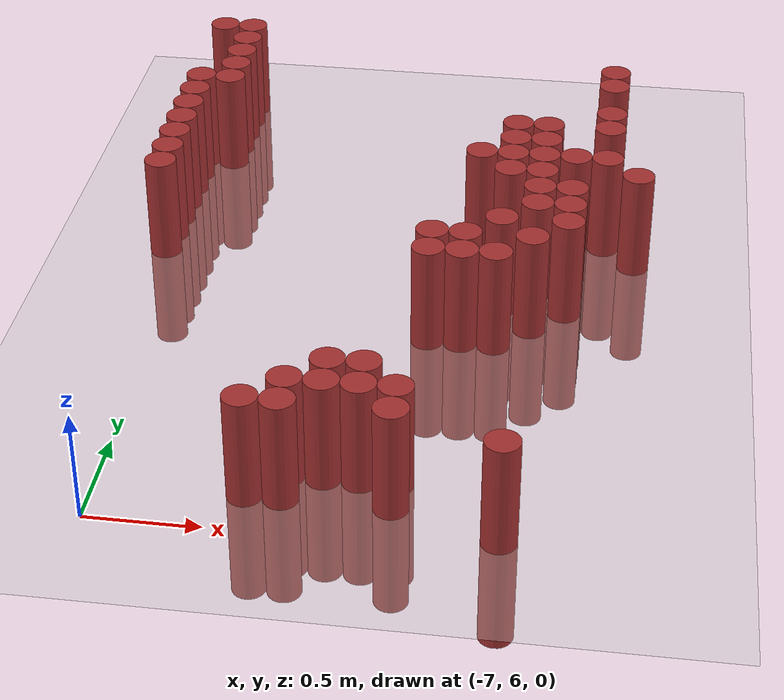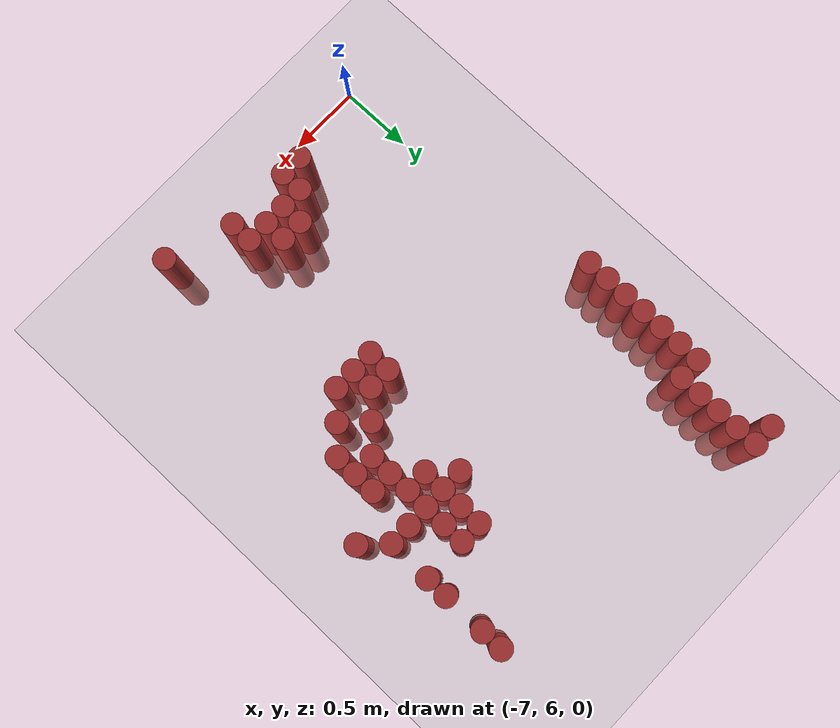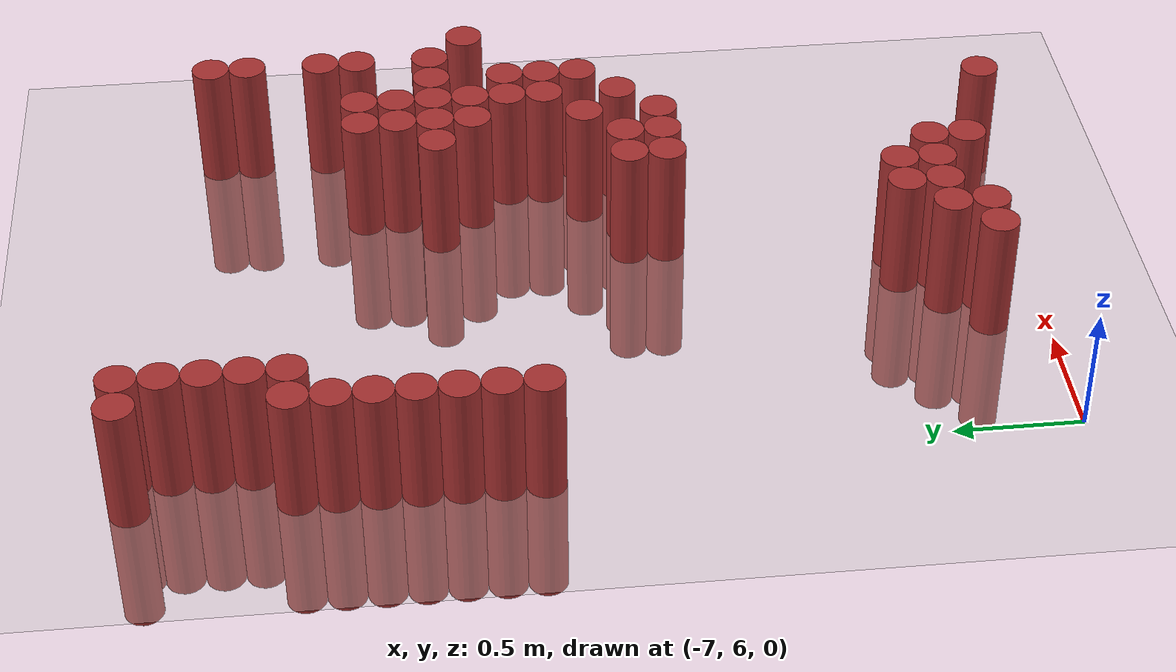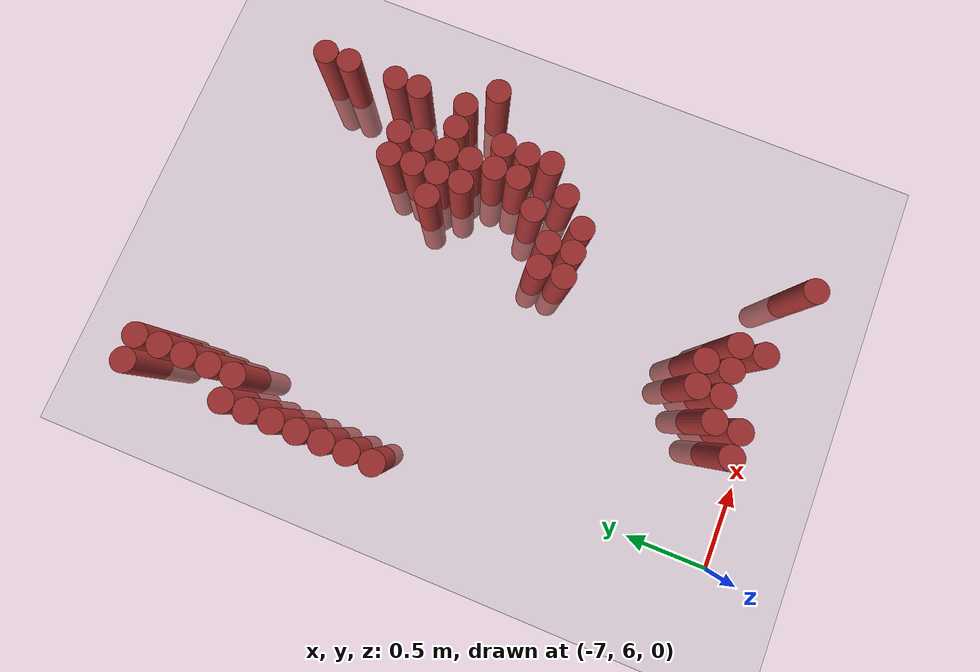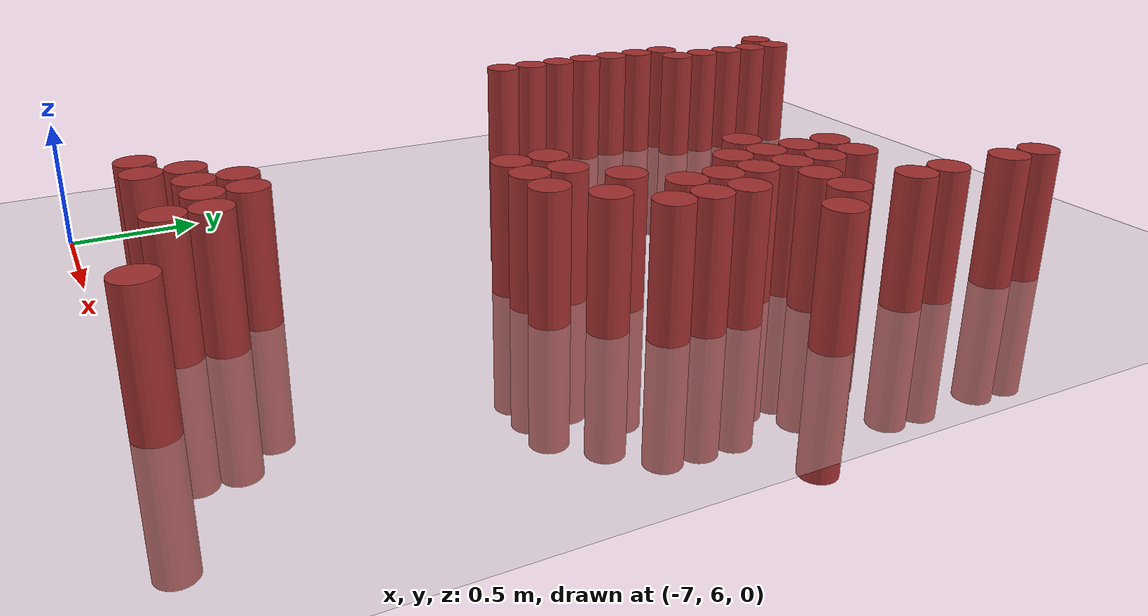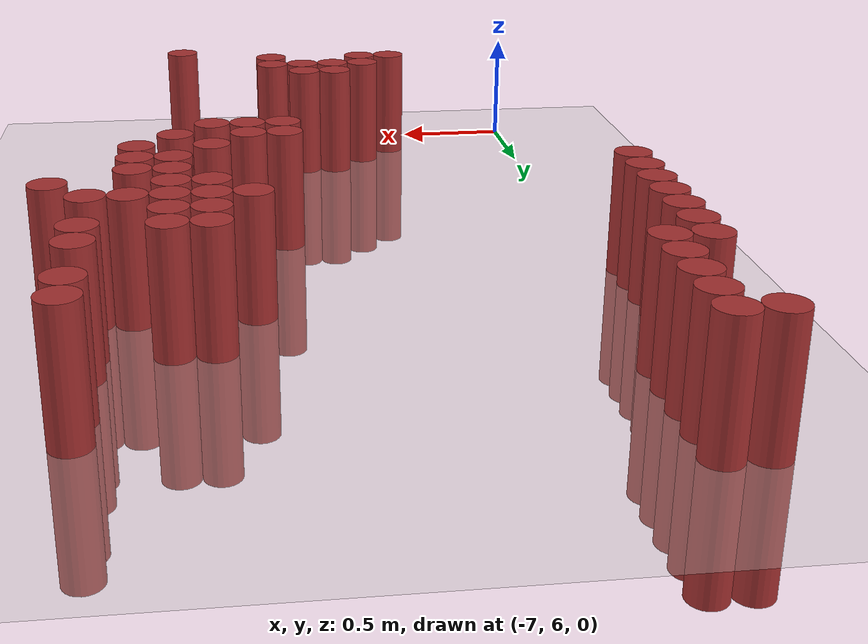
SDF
<sdf version="1.6">
 <world name="default">
  <model name="ground_plane">
   <static>1</static>
   <link name="link">
    <collision name="collision">
     <geometry><plane><normal>0 0 1</normal><size>100 100</size></plane></geometry>
     <surface><friction><ode><mu>100</mu><mu2>50</mu2></ode></friction></surface>
    </collision>
    <visual name="visual">
     <cast_shadows>0</cast_shadows>
     <geometry><plane><normal>0 0 1</normal><size>100 100</size></plane></geometry>
     <material>
      <script><uri>file://media/materials/scripts/gazebo.material</uri><name>Gazebo/Grey</name></script>
     </material>
    </visual>
   </link>
  </model>
  <model name="unit_cylinder_196">
   <static>1</static>
   <pose>-7.125000 8.025000 0.000000 0.000000 0.000000 0.000000</pose>
   <link name="link">
    <inertial>
     <mass>1</mass>
     <inertia><ixx>0.145833</ixx><ixy>0</ixy><ixz>0</ixz><iyy>0.145833</iyy><iyz>0</iyz><izz>0.125</izz></inertia>
    </inertial>
    <collision name="collision">
     <geometry><cylinder><radius>0.075000</radius><length>1</length></cylinder></geometry>
    </collision>
    <visual name="visual">
     <geometry><cylinder><radius>0.075000</radius><length>1</length></cylinder></geometry>
     <material>
      <ambient>0.648000 0.192000 0.192000 1</ambient>
      <diffuse>0.648000 0.192000 0.192000 1</diffuse>
     </material>
     <material>
      <script><name>Gazebo/Grey</name><uri>file://media/materials/scripts/gazebo.material</uri></script>
     </material>
    </visual>
   </link>
  </model>
  <model name="unit_cylinder_197">
   <static>1</static>
   <pose>-7.125000 8.175000 0.000000 0.000000 0.000000 0.000000</pose>
   <link name="link">
    <inertial>
     <mass>1</mass>
     <inertia><ixx>0.145833</ixx><ixy>0</ixy><ixz>0</ixz><iyy>0.145833</iyy><iyz>0</iyz><izz>0.125</izz></inertia>
    </inertial>
    <collision name="collision">
     <geometry><cylinder><radius>0.075000</radius><length>1</length></cylinder></geometry>
    </collision>
    <visual name="visual">
     <geometry><cylinder><radius>0.075000</radius><length>1</length></cylinder></geometry>
     <material>
      <ambient>0.648000 0.192000 0.192000 1</ambient>
      <diffuse>0.648000 0.192000 0.192000 1</diffuse>
     </material>
     <material>
      <script><name>Gazebo/Grey</name><uri>file://media/materials/scripts/gazebo.material</uri></script>
     </material>
    </visual>
   </link>
  </model>
  <model name="unit_cylinder_198">
   <static>1</static>
   <pose>-7.125000 8.325000 0.000000 0.000000 0.000000 0.000000</pose>
   <link name="link">
    <inertial>
     <mass>1</mass>
     <inertia><ixx>0.145833</ixx><ixy>0</ixy><ixz>0</ixz><iyy>0.145833</iyy><iyz>0</iyz><izz>0.125</izz></inertia>
    </inertial>
    <collision name="collision">
     <geometry><cylinder><radius>0.075000</radius><length>1</length></cylinder></geometry>
    </collision>
    <visual name="visual">
     <geometry><cylinder><radius>0.075000</radius><length>1</length></cylinder></geometry>
     <material>
      <ambient>0.648000 0.192000 0.192000 1</ambient>
      <diffuse>0.648000 0.192000 0.192000 1</diffuse>
     </material>
     <material>
      <script><name>Gazebo/Grey</name><uri>file://media/materials/scripts/gazebo.material</uri></script>
     </material>
    </visual>
   </link>
  </model>
  <model name="unit_cylinder_199">
   <static>1</static>
   <pose>-7.125000 8.475000 0.000000 0.000000 0.000000 0.000000</pose>
   <link name="link">
    <inertial>
     <mass>1</mass>
     <inertia><ixx>0.145833</ixx><ixy>0</ixy><ixz>0</ixz><iyy>0.145833</iyy><iyz>0</iyz><izz>0.125</izz></inertia>
    </inertial>
    <collision name="collision">
     <geometry><cylinder><radius>0.075000</radius><length>1</length></cylinder></geometry>
    </collision>
    <visual name="visual">
     <geometry><cylinder><radius>0.075000</radius><length>1</length></cylinder></geometry>
     <material>
      <ambient>0.648000 0.192000 0.192000 1</ambient>
      <diffuse>0.648000 0.192000 0.192000 1</diffuse>
     </material>
     <material>
      <script><name>Gazebo/Grey</name><uri>file://media/materials/scripts/gazebo.material</uri></script>
     </material>
    </visual>
   </link>
  </model>
  <model name="unit_cylinder_200">
   <static>1</static>
   <pose>-7.125000 8.625000 0.000000 0.000000 0.000000 0.000000</pose>
   <link name="link">
    <inertial>
     <mass>1</mass>
     <inertia><ixx>0.145833</ixx><ixy>0</ixy><ixz>0</ixz><iyy>0.145833</iyy><iyz>0</iyz><izz>0.125</izz></inertia>
    </inertial>
    <collision name="collision">
     <geometry><cylinder><radius>0.075000</radius><length>1</length></cylinder></geometry>
    </collision>
    <visual name="visual">
     <geometry><cylinder><radius>0.075000</radius><length>1</length></cylinder></geometry>
     <material>
      <ambient>0.648000 0.192000 0.192000 1</ambient>
      <diffuse>0.648000 0.192000 0.192000 1</diffuse>
     </material>
     <material>
      <script><name>Gazebo/Grey</name><uri>file://media/materials/scripts/gazebo.material</uri></script>
     </material>
    </visual>
   </link>
  </model>
  <model name="unit_cylinder_201">
   <static>1</static>
   <pose>-7.125000 8.775000 0.000000 0.000000 0.000000 0.000000</pose>
   <link name="link">
    <inertial>
     <mass>1</mass>
     <inertia><ixx>0.145833</ixx><ixy>0</ixy><ixz>0</ixz><iyy>0.145833</iyy><iyz>0</iyz><izz>0.125</izz></inertia>
    </inertial>
    <collision name="collision">
     <geometry><cylinder><radius>0.075000</radius><length>1</length></cylinder></geometry>
    </collision>
    <visual name="visual">
     <geometry><cylinder><radius>0.075000</radius><length>1</length></cylinder></geometry>
     <material>
      <ambient>0.648000 0.192000 0.192000 1</ambient>
      <diffuse>0.648000 0.192000 0.192000 1</diffuse>
     </material>
     <material>
      <script><name>Gazebo/Grey</name><uri>file://media/materials/scripts/gazebo.material</uri></script>
     </material>
    </visual>
   </link>
  </model>
  <model name="unit_cylinder_202">
   <static>1</static>
   <pose>-7.125000 8.925000 0.000000 0.000000 0.000000 0.000000</pose>
   <link name="link">
    <inertial>
     <mass>1</mass>
     <inertia><ixx>0.145833</ixx><ixy>0</ixy><ixz>0</ixz><iyy>0.145833</iyy><iyz>0</iyz><izz>0.125</izz></inertia>
    </inertial>
    <collision name="collision">
     <geometry><cylinder><radius>0.075000</radius><length>1</length></cylinder></geometry>
    </collision>
    <visual name="visual">
     <geometry><cylinder><radius>0.075000</radius><length>1</length></cylinder></geometry>
     <material>
      <ambient>0.648000 0.192000 0.192000 1</ambient>
      <diffuse>0.648000 0.192000 0.192000 1</diffuse>
     </material>
     <material>
      <script><name>Gazebo/Grey</name><uri>file://media/materials/scripts/gazebo.material</uri></script>
     </material>
    </visual>
   </link>
  </model>
  <model name="unit_cylinder_203">
   <static>1</static>
   <pose>-7.125000 9.525000 0.000000 0.000000 0.000000 0.000000</pose>
   <link name="link">
    <inertial>
     <mass>1</mass>
     <inertia><ixx>0.145833</ixx><ixy>0</ixy><ixz>0</ixz><iyy>0.145833</iyy><iyz>0</iyz><izz>0.125</izz></inertia>
    </inertial>
    <collision name="collision">
     <geometry><cylinder><radius>0.075000</radius><length>1</length></cylinder></geometry>
    </collision>
    <visual name="visual">
     <geometry><cylinder><radius>0.075000</radius><length>1</length></cylinder></geometry>
     <material>
      <ambient>0.648000 0.192000 0.192000 1</ambient>
      <diffuse>0.648000 0.192000 0.192000 1</diffuse>
     </material>
     <material>
      <script><name>Gazebo/Grey</name><uri>file://media/materials/scripts/gazebo.material</uri></script>
     </material>
    </visual>
   </link>
  </model>
  <model name="unit_cylinder_204">
   <static>1</static>
   <pose>-6.975000 8.925000 0.000000 0.000000 0.000000 0.000000</pose>
   <link name="link">
    <inertial>
     <mass>1</mass>
     <inertia><ixx>0.145833</ixx><ixy>0</ixy><ixz>0</ixz><iyy>0.145833</iyy><iyz>0</iyz><izz>0.125</izz></inertia>
    </inertial>
    <collision name="collision">
     <geometry><cylinder><radius>0.075000</radius><length>1</length></cylinder></geometry>
    </collision>
    <visual name="visual">
     <geometry><cylinder><radius>0.075000</radius><length>1</length></cylinder></geometry>
     <material>
      <ambient>0.648000 0.192000 0.192000 1</ambient>
      <diffuse>0.648000 0.192000 0.192000 1</diffuse>
     </material>
     <material>
      <script><name>Gazebo/Grey</name><uri>file://media/materials/scripts/gazebo.material</uri></script>
     </material>
    </visual>
   </link>
  </model>
  <model name="unit_cylinder_205">
   <static>1</static>
   <pose>-6.975000 9.075000 0.000000 0.000000 0.000000 0.000000</pose>
   <link name="link">
    <inertial>
     <mass>1</mass>
     <inertia><ixx>0.145833</ixx><ixy>0</ixy><ixz>0</ixz><iyy>0.145833</iyy><iyz>0</iyz><izz>0.125</izz></inertia>
    </inertial>
    <collision name="collision">
     <geometry><cylinder><radius>0.075000</radius><length>1</length></cylinder></geometry>
    </collision>
    <visual name="visual">
     <geometry><cylinder><radius>0.075000</radius><length>1</length></cylinder></geometry>
     <material>
      <ambient>0.648000 0.192000 0.192000 1</ambient>
      <diffuse>0.648000 0.192000 0.192000 1</diffuse>
     </material>
     <material>
      <script><name>Gazebo/Grey</name><uri>file://media/materials/scripts/gazebo.material</uri></script>
     </material>
    </visual>
   </link>
  </model>
  <model name="unit_cylinder_206">
   <static>1</static>
   <pose>-6.975000 9.225000 0.000000 0.000000 0.000000 0.000000</pose>
   <link name="link">
    <inertial>
     <mass>1</mass>
     <inertia><ixx>0.145833</ixx><ixy>0</ixy><ixz>0</ixz><iyy>0.145833</iyy><iyz>0</iyz><izz>0.125</izz></inertia>
    </inertial>
    <collision name="collision">
     <geometry><cylinder><radius>0.075000</radius><length>1</length></cylinder></geometry>
    </collision>
    <visual name="visual">
     <geometry><cylinder><radius>0.075000</radius><length>1</length></cylinder></geometry>
     <material>
      <ambient>0.648000 0.192000 0.192000 1</ambient>
      <diffuse>0.648000 0.192000 0.192000 1</diffuse>
     </material>
     <material>
      <script><name>Gazebo/Grey</name><uri>file://media/materials/scripts/gazebo.material</uri></script>
     </material>
    </visual>
   </link>
  </model>
  <model name="unit_cylinder_207">
   <static>1</static>
   <pose>-6.975000 9.375000 0.000000 0.000000 0.000000 0.000000</pose>
   <link name="link">
    <inertial>
     <mass>1</mass>
     <inertia><ixx>0.145833</ixx><ixy>0</ixy><ixz>0</ixz><iyy>0.145833</iyy><iyz>0</iyz><izz>0.125</izz></inertia>
    </inertial>
    <collision name="collision">
     <geometry><cylinder><radius>0.075000</radius><length>1</length></cylinder></geometry>
    </collision>
    <visual name="visual">
     <geometry><cylinder><radius>0.075000</radius><length>1</length></cylinder></geometry>
     <material>
      <ambient>0.648000 0.192000 0.192000 1</ambient>
      <diffuse>0.648000 0.192000 0.192000 1</diffuse>
     </material>
     <material>
      <script><name>Gazebo/Grey</name><uri>file://media/materials/scripts/gazebo.material</uri></script>
     </material>
    </visual>
   </link>
  </model>
  <model name="unit_cylinder_208">
   <static>1</static>
   <pose>-6.975000 9.525000 0.000000 0.000000 0.000000 0.000000</pose>
   <link name="link">
    <inertial>
     <mass>1</mass>
     <inertia><ixx>0.145833</ixx><ixy>0</ixy><ixz>0</ixz><iyy>0.145833</iyy><iyz>0</iyz><izz>0.125</izz></inertia>
    </inertial>
    <collision name="collision">
     <geometry><cylinder><radius>0.075000</radius><length>1</length></cylinder></geometry>
    </collision>
    <visual name="visual">
     <geometry><cylinder><radius>0.075000</radius><length>1</length></cylinder></geometry>
     <material>
      <ambient>0.648000 0.192000 0.192000 1</ambient>
      <diffuse>0.648000 0.192000 0.192000 1</diffuse>
     </material>
     <material>
      <script><name>Gazebo/Grey</name><uri>file://media/materials/scripts/gazebo.material</uri></script>
     </material>
    </visual>
   </link>
  </model>
  <model name="unit_cylinder_210">
   <static>1</static>
   <pose>-6.375000 6.225000 0.000000 0.000000 0.000000 0.000000</pose>
   <link name="link">
    <inertial>
     <mass>1</mass>
     <inertia><ixx>0.145833</ixx><ixy>0</ixy><ixz>0</ixz><iyy>0.145833</iyy><iyz>0</iyz><izz>0.125</izz></inertia>
    </inertial>
    <collision name="collision">
     <geometry><cylinder><radius>0.075000</radius><length>1</length></cylinder></geometry>
    </collision>
    <visual name="visual">
     <geometry><cylinder><radius>0.075000</radius><length>1</length></cylinder></geometry>
     <material>
      <ambient>0.648000 0.192000 0.192000 1</ambient>
      <diffuse>0.648000 0.192000 0.192000 1</diffuse>
     </material>
     <material>
      <script><name>Gazebo/Grey</name><uri>file://media/materials/scripts/gazebo.material</uri></script>
     </material>
    </visual>
   </link>
  </model>
  <model name="unit_cylinder_213">
   <static>1</static>
   <pose>-6.225000 6.225000 0.000000 0.000000 0.000000 0.000000</pose>
   <link name="link">
    <inertial>
     <mass>1</mass>
     <inertia><ixx>0.145833</ixx><ixy>0</ixy><ixz>0</ixz><iyy>0.145833</iyy><iyz>0</iyz><izz>0.125</izz></inertia>
    </inertial>
    <collision name="collision">
     <geometry><cylinder><radius>0.075000</radius><length>1</length></cylinder></geometry>
    </collision>
    <visual name="visual">
     <geometry><cylinder><radius>0.075000</radius><length>1</length></cylinder></geometry>
     <material>
      <ambient>0.648000 0.192000 0.192000 1</ambient>
      <diffuse>0.648000 0.192000 0.192000 1</diffuse>
     </material>
     <material>
      <script><name>Gazebo/Grey</name><uri>file://media/materials/scripts/gazebo.material</uri></script>
     </material>
    </visual>
   </link>
  </model>
  <model name="unit_cylinder_214">
   <static>1</static>
   <pose>-6.225000 6.375000 0.000000 0.000000 0.000000 0.000000</pose>
   <link name="link">
    <inertial>
     <mass>1</mass>
     <inertia><ixx>0.145833</ixx><ixy>0</ixy><ixz>0</ixz><iyy>0.145833</iyy><iyz>0</iyz><izz>0.125</izz></inertia>
    </inertial>
    <collision name="collision">
     <geometry><cylinder><radius>0.075000</radius><length>1</length></cylinder></geometry>
    </collision>
    <visual name="visual">
     <geometry><cylinder><radius>0.075000</radius><length>1</length></cylinder></geometry>
     <material>
      <ambient>0.648000 0.192000 0.192000 1</ambient>
      <diffuse>0.648000 0.192000 0.192000 1</diffuse>
     </material>
     <material>
      <script><name>Gazebo/Grey</name><uri>file://media/materials/scripts/gazebo.material</uri></script>
     </material>
    </visual>
   </link>
  </model>
  <model name="unit_cylinder_216">
   <static>1</static>
   <pose>-6.075000 6.375000 0.000000 0.000000 0.000000 0.000000</pose>
   <link name="link">
    <inertial>
     <mass>1</mass>
     <inertia><ixx>0.145833</ixx><ixy>0</ixy><ixz>0</ixz><iyy>0.145833</iyy><iyz>0</iyz><izz>0.125</izz></inertia>
    </inertial>
    <collision name="collision">
     <geometry><cylinder><radius>0.075000</radius><length>1</length></cylinder></geometry>
    </collision>
    <visual name="visual">
     <geometry><cylinder><radius>0.075000</radius><length>1</length></cylinder></geometry>
     <material>
      <ambient>0.648000 0.192000 0.192000 1</ambient>
      <diffuse>0.648000 0.192000 0.192000 1</diffuse>
     </material>
     <material>
      <script><name>Gazebo/Grey</name><uri>file://media/materials/scripts/gazebo.material</uri></script>
     </material>
    </visual>
   </link>
  </model>
  <model name="unit_cylinder_217">
   <static>1</static>
   <pose>-6.075000 6.525000 0.000000 0.000000 0.000000 0.000000</pose>
   <link name="link">
    <inertial>
     <mass>1</mass>
     <inertia><ixx>0.145833</ixx><ixy>0</ixy><ixz>0</ixz><iyy>0.145833</iyy><iyz>0</iyz><izz>0.125</izz></inertia>
    </inertial>
    <collision name="collision">
     <geometry><cylinder><radius>0.075000</radius><length>1</length></cylinder></geometry>
    </collision>
    <visual name="visual">
     <geometry><cylinder><radius>0.075000</radius><length>1</length></cylinder></geometry>
     <material>
      <ambient>0.648000 0.192000 0.192000 1</ambient>
      <diffuse>0.648000 0.192000 0.192000 1</diffuse>
     </material>
     <material>
      <script><name>Gazebo/Grey</name><uri>file://media/materials/scripts/gazebo.material</uri></script>
     </material>
    </visual>
   </link>
  </model>
  <model name="unit_cylinder_220">
   <static>1</static>
   <pose>-5.925000 6.375000 0.000000 0.000000 0.000000 0.000000</pose>
   <link name="link">
    <inertial>
     <mass>1</mass>
     <inertia><ixx>0.145833</ixx><ixy>0</ixy><ixz>0</ixz><iyy>0.145833</iyy><iyz>0</iyz><izz>0.125</izz></inertia>
    </inertial>
    <collision name="collision">
     <geometry><cylinder><radius>0.075000</radius><length>1</length></cylinder></geometry>
    </collision>
    <visual name="visual">
     <geometry><cylinder><radius>0.075000</radius><length>1</length></cylinder></geometry>
     <material>
      <ambient>0.648000 0.192000 0.192000 1</ambient>
      <diffuse>0.648000 0.192000 0.192000 1</diffuse>
     </material>
     <material>
      <script><name>Gazebo/Grey</name><uri>file://media/materials/scripts/gazebo.material</uri></script>
     </material>
    </visual>
   </link>
  </model>
  <model name="unit_cylinder_221">
   <static>1</static>
   <pose>-5.925000 6.525000 0.000000 0.000000 0.000000 0.000000</pose>
   <link name="link">
    <inertial>
     <mass>1</mass>
     <inertia><ixx>0.145833</ixx><ixy>0</ixy><ixz>0</ixz><iyy>0.145833</iyy><iyz>0</iyz><izz>0.125</izz></inertia>
    </inertial>
    <collision name="collision">
     <geometry><cylinder><radius>0.075000</radius><length>1</length></cylinder></geometry>
    </collision>
    <visual name="visual">
     <geometry><cylinder><radius>0.075000</radius><length>1</length></cylinder></geometry>
     <material>
      <ambient>0.648000 0.192000 0.192000 1</ambient>
      <diffuse>0.648000 0.192000 0.192000 1</diffuse>
     </material>
     <material>
      <script><name>Gazebo/Grey</name><uri>file://media/materials/scripts/gazebo.material</uri></script>
     </material>
    </visual>
   </link>
  </model>
  <model name="unit_cylinder_227">
   <static>1</static>
   <pose>-5.775000 6.225000 0.000000 0.000000 0.000000 0.000000</pose>
   <link name="link">
    <inertial>
     <mass>1</mass>
     <inertia><ixx>0.145833</ixx><ixy>0</ixy><ixz>0</ixz><iyy>0.145833</iyy><iyz>0</iyz><izz>0.125</izz></inertia>
    </inertial>
    <collision name="collision">
     <geometry><cylinder><radius>0.075000</radius><length>1</length></cylinder></geometry>
    </collision>
    <visual name="visual">
     <geometry><cylinder><radius>0.075000</radius><length>1</length></cylinder></geometry>
     <material>
      <ambient>0.648000 0.192000 0.192000 1</ambient>
      <diffuse>0.648000 0.192000 0.192000 1</diffuse>
     </material>
     <material>
      <script><name>Gazebo/Grey</name><uri>file://media/materials/scripts/gazebo.material</uri></script>
     </material>
    </visual>
   </link>
  </model>
  <model name="unit_cylinder_228">
   <static>1</static>
   <pose>-5.775000 6.375000 0.000000 0.000000 0.000000 0.000000</pose>
   <link name="link">
    <inertial>
     <mass>1</mass>
     <inertia><ixx>0.145833</ixx><ixy>0</ixy><ixz>0</ixz><iyy>0.145833</iyy><iyz>0</iyz><izz>0.125</izz></inertia>
    </inertial>
    <collision name="collision">
     <geometry><cylinder><radius>0.075000</radius><length>1</length></cylinder></geometry>
    </collision>
    <visual name="visual">
     <geometry><cylinder><radius>0.075000</radius><length>1</length></cylinder></geometry>
     <material>
      <ambient>0.648000 0.192000 0.192000 1</ambient>
      <diffuse>0.648000 0.192000 0.192000 1</diffuse>
     </material>
     <material>
      <script><name>Gazebo/Grey</name><uri>file://media/materials/scripts/gazebo.material</uri></script>
     </material>
    </visual>
   </link>
  </model>
  <model name="unit_cylinder_229">
   <static>1</static>
   <pose>-5.775000 7.425000 0.000000 0.000000 0.000000 0.000000</pose>
   <link name="link">
    <inertial>
     <mass>1</mass>
     <inertia><ixx>0.145833</ixx><ixy>0</ixy><ixz>0</ixz><iyy>0.145833</iyy><iyz>0</iyz><izz>0.125</izz></inertia>
    </inertial>
    <collision name="collision">
     <geometry><cylinder><radius>0.075000</radius><length>1</length></cylinder></geometry>
    </collision>
    <visual name="visual">
     <geometry><cylinder><radius>0.075000</radius><length>1</length></cylinder></geometry>
     <material>
      <ambient>0.648000 0.192000 0.192000 1</ambient>
      <diffuse>0.648000 0.192000 0.192000 1</diffuse>
     </material>
     <material>
      <script><name>Gazebo/Grey</name><uri>file://media/materials/scripts/gazebo.material</uri></script>
     </material>
    </visual>
   </link>
  </model>
  <model name="unit_cylinder_230">
   <static>1</static>
   <pose>-5.775000 7.575000 0.000000 0.000000 0.000000 0.000000</pose>
   <link name="link">
    <inertial>
     <mass>1</mass>
     <inertia><ixx>0.145833</ixx><ixy>0</ixy><ixz>0</ixz><iyy>0.145833</iyy><iyz>0</iyz><izz>0.125</izz></inertia>
    </inertial>
    <collision name="collision">
     <geometry><cylinder><radius>0.075000</radius><length>1</length></cylinder></geometry>
    </collision>
    <visual name="visual">
     <geometry><cylinder><radius>0.075000</radius><length>1</length></cylinder></geometry>
     <material>
      <ambient>0.648000 0.192000 0.192000 1</ambient>
      <diffuse>0.648000 0.192000 0.192000 1</diffuse>
     </material>
     <material>
      <script><name>Gazebo/Grey</name><uri>file://media/materials/scripts/gazebo.material</uri></script>
     </material>
    </visual>
   </link>
  </model>
  <model name="unit_cylinder_234">
   <static>1</static>
   <pose>-5.625000 7.425000 0.000000 0.000000 0.000000 0.000000</pose>
   <link name="link">
    <inertial>
     <mass>1</mass>
     <inertia><ixx>0.145833</ixx><ixy>0</ixy><ixz>0</ixz><iyy>0.145833</iyy><iyz>0</iyz><izz>0.125</izz></inertia>
    </inertial>
    <collision name="collision">
     <geometry><cylinder><radius>0.075000</radius><length>1</length></cylinder></geometry>
    </collision>
    <visual name="visual">
     <geometry><cylinder><radius>0.075000</radius><length>1</length></cylinder></geometry>
     <material>
      <ambient>0.648000 0.192000 0.192000 1</ambient>
      <diffuse>0.648000 0.192000 0.192000 1</diffuse>
     </material>
     <material>
      <script><name>Gazebo/Grey</name><uri>file://media/materials/scripts/gazebo.material</uri></script>
     </material>
    </visual>
   </link>
  </model>
  <model name="unit_cylinder_235">
   <static>1</static>
   <pose>-5.625000 7.575000 0.000000 0.000000 0.000000 0.000000</pose>
   <link name="link">
    <inertial>
     <mass>1</mass>
     <inertia><ixx>0.145833</ixx><ixy>0</ixy><ixz>0</ixz><iyy>0.145833</iyy><iyz>0</iyz><izz>0.125</izz></inertia>
    </inertial>
    <collision name="collision">
     <geometry><cylinder><radius>0.075000</radius><length>1</length></cylinder></geometry>
    </collision>
    <visual name="visual">
     <geometry><cylinder><radius>0.075000</radius><length>1</length></cylinder></geometry>
     <material>
      <ambient>0.648000 0.192000 0.192000 1</ambient>
      <diffuse>0.648000 0.192000 0.192000 1</diffuse>
     </material>
     <material>
      <script><name>Gazebo/Grey</name><uri>file://media/materials/scripts/gazebo.material</uri></script>
     </material>
    </visual>
   </link>
  </model>
  <model name="unit_cylinder_236">
   <static>1</static>
   <pose>-5.625000 8.325000 0.000000 0.000000 0.000000 0.000000</pose>
   <link name="link">
    <inertial>
     <mass>1</mass>
     <inertia><ixx>0.145833</ixx><ixy>0</ixy><ixz>0</ixz><iyy>0.145833</iyy><iyz>0</iyz><izz>0.125</izz></inertia>
    </inertial>
    <collision name="collision">
     <geometry><cylinder><radius>0.075000</radius><length>1</length></cylinder></geometry>
    </collision>
    <visual name="visual">
     <geometry><cylinder><radius>0.075000</radius><length>1</length></cylinder></geometry>
     <material>
      <ambient>0.648000 0.192000 0.192000 1</ambient>
      <diffuse>0.648000 0.192000 0.192000 1</diffuse>
     </material>
     <material>
      <script><name>Gazebo/Grey</name><uri>file://media/materials/scripts/gazebo.material</uri></script>
     </material>
    </visual>
   </link>
  </model>
  <model name="unit_cylinder_240">
   <static>1</static>
   <pose>-5.475000 7.425000 0.000000 0.000000 0.000000 0.000000</pose>
   <link name="link">
    <inertial>
     <mass>1</mass>
     <inertia><ixx>0.145833</ixx><ixy>0</ixy><ixz>0</ixz><iyy>0.145833</iyy><iyz>0</iyz><izz>0.125</izz></inertia>
    </inertial>
    <collision name="collision">
     <geometry><cylinder><radius>0.075000</radius><length>1</length></cylinder></geometry>
    </collision>
    <visual name="visual">
     <geometry><cylinder><radius>0.075000</radius><length>1</length></cylinder></geometry>
     <material>
      <ambient>0.648000 0.192000 0.192000 1</ambient>
      <diffuse>0.648000 0.192000 0.192000 1</diffuse>
     </material>
     <material>
      <script><name>Gazebo/Grey</name><uri>file://media/materials/scripts/gazebo.material</uri></script>
     </material>
    </visual>
   </link>
  </model>
  <model name="unit_cylinder_241">
   <static>1</static>
   <pose>-5.475000 7.725000 0.000000 0.000000 0.000000 0.000000</pose>
   <link name="link">
    <inertial>
     <mass>1</mass>
     <inertia><ixx>0.145833</ixx><ixy>0</ixy><ixz>0</ixz><iyy>0.145833</iyy><iyz>0</iyz><izz>0.125</izz></inertia>
    </inertial>
    <collision name="collision">
     <geometry><cylinder><radius>0.075000</radius><length>1</length></cylinder></geometry>
    </collision>
    <visual name="visual">
     <geometry><cylinder><radius>0.075000</radius><length>1</length></cylinder></geometry>
     <material>
      <ambient>0.648000 0.192000 0.192000 1</ambient>
      <diffuse>0.648000 0.192000 0.192000 1</diffuse>
     </material>
     <material>
      <script><name>Gazebo/Grey</name><uri>file://media/materials/scripts/gazebo.material</uri></script>
     </material>
    </visual>
   </link>
  </model>
  <model name="unit_cylinder_242">
   <static>1</static>
   <pose>-5.475000 8.175000 0.000000 0.000000 0.000000 0.000000</pose>
   <link name="link">
    <inertial>
     <mass>1</mass>
     <inertia><ixx>0.145833</ixx><ixy>0</ixy><ixz>0</ixz><iyy>0.145833</iyy><iyz>0</iyz><izz>0.125</izz></inertia>
    </inertial>
    <collision name="collision">
     <geometry><cylinder><radius>0.075000</radius><length>1</length></cylinder></geometry>
    </collision>
    <visual name="visual">
     <geometry><cylinder><radius>0.075000</radius><length>1</length></cylinder></geometry>
     <material>
      <ambient>0.648000 0.192000 0.192000 1</ambient>
      <diffuse>0.648000 0.192000 0.192000 1</diffuse>
     </material>
     <material>
      <script><name>Gazebo/Grey</name><uri>file://media/materials/scripts/gazebo.material</uri></script>
     </material>
    </visual>
   </link>
  </model>
  <model name="unit_cylinder_243">
   <static>1</static>
   <pose>-5.475000 8.325000 0.000000 0.000000 0.000000 0.000000</pose>
   <link name="link">
    <inertial>
     <mass>1</mass>
     <inertia><ixx>0.145833</ixx><ixy>0</ixy><ixz>0</ixz><iyy>0.145833</iyy><iyz>0</iyz><izz>0.125</izz></inertia>
    </inertial>
    <collision name="collision">
     <geometry><cylinder><radius>0.075000</radius><length>1</length></cylinder></geometry>
    </collision>
    <visual name="visual">
     <geometry><cylinder><radius>0.075000</radius><length>1</length></cylinder></geometry>
     <material>
      <ambient>0.648000 0.192000 0.192000 1</ambient>
      <diffuse>0.648000 0.192000 0.192000 1</diffuse>
     </material>
     <material>
      <script><name>Gazebo/Grey</name><uri>file://media/materials/scripts/gazebo.material</uri></script>
     </material>
    </visual>
   </link>
  </model>
  <model name="unit_cylinder_244">
   <static>1</static>
   <pose>-5.475000 8.475000 0.000000 0.000000 0.000000 0.000000</pose>
   <link name="link">
    <inertial>
     <mass>1</mass>
     <inertia><ixx>0.145833</ixx><ixy>0</ixy><ixz>0</ixz><iyy>0.145833</iyy><iyz>0</iyz><izz>0.125</izz></inertia>
    </inertial>
    <collision name="collision">
     <geometry><cylinder><radius>0.075000</radius><length>1</length></cylinder></geometry>
    </collision>
    <visual name="visual">
     <geometry><cylinder><radius>0.075000</radius><length>1</length></cylinder></geometry>
     <material>
      <ambient>0.648000 0.192000 0.192000 1</ambient>
      <diffuse>0.648000 0.192000 0.192000 1</diffuse>
     </material>
     <material>
      <script><name>Gazebo/Grey</name><uri>file://media/materials/scripts/gazebo.material</uri></script>
     </material>
    </visual>
   </link>
  </model>
  <model name="unit_cylinder_245">
   <static>1</static>
   <pose>-5.475000 8.625000 0.000000 0.000000 0.000000 0.000000</pose>
   <link name="link">
    <inertial>
     <mass>1</mass>
     <inertia><ixx>0.145833</ixx><ixy>0</ixy><ixz>0</ixz><iyy>0.145833</iyy><iyz>0</iyz><izz>0.125</izz></inertia>
    </inertial>
    <collision name="collision">
     <geometry><cylinder><radius>0.075000</radius><length>1</length></cylinder></geometry>
    </collision>
    <visual name="visual">
     <geometry><cylinder><radius>0.075000</radius><length>1</length></cylinder></geometry>
     <material>
      <ambient>0.648000 0.192000 0.192000 1</ambient>
      <diffuse>0.648000 0.192000 0.192000 1</diffuse>
     </material>
     <material>
      <script><name>Gazebo/Grey</name><uri>file://media/materials/scripts/gazebo.material</uri></script>
     </material>
    </visual>
   </link>
  </model>
  <model name="unit_cylinder_249">
   <static>1</static>
   <pose>-5.325000 6.075000 0.000000 0.000000 0.000000 0.000000</pose>
   <link name="link">
    <inertial>
     <mass>1</mass>
     <inertia><ixx>0.145833</ixx><ixy>0</ixy><ixz>0</ixz><iyy>0.145833</iyy><iyz>0</iyz><izz>0.125</izz></inertia>
    </inertial>
    <collision name="collision">
     <geometry><cylinder><radius>0.075000</radius><length>1</length></cylinder></geometry>
    </collision>
    <visual name="visual">
     <geometry><cylinder><radius>0.075000</radius><length>1</length></cylinder></geometry>
     <material>
      <ambient>0.648000 0.192000 0.192000 1</ambient>
      <diffuse>0.648000 0.192000 0.192000 1</diffuse>
     </material>
     <material>
      <script><name>Gazebo/Grey</name><uri>file://media/materials/scripts/gazebo.material</uri></script>
     </material>
    </visual>
   </link>
  </model>
  <model name="unit_cylinder_250">
   <static>1</static>
   <pose>-5.325000 7.575000 0.000000 0.000000 0.000000 0.000000</pose>
   <link name="link">
    <inertial>
     <mass>1</mass>
     <inertia><ixx>0.145833</ixx><ixy>0</ixy><ixz>0</ixz><iyy>0.145833</iyy><iyz>0</iyz><izz>0.125</izz></inertia>
    </inertial>
    <collision name="collision">
     <geometry><cylinder><radius>0.075000</radius><length>1</length></cylinder></geometry>
    </collision>
    <visual name="visual">
     <geometry><cylinder><radius>0.075000</radius><length>1</length></cylinder></geometry>
     <material>
      <ambient>0.648000 0.192000 0.192000 1</ambient>
      <diffuse>0.648000 0.192000 0.192000 1</diffuse>
     </material>
     <material>
      <script><name>Gazebo/Grey</name><uri>file://media/materials/scripts/gazebo.material</uri></script>
     </material>
    </visual>
   </link>
  </model>
  <model name="unit_cylinder_251">
   <static>1</static>
   <pose>-5.325000 7.875000 0.000000 0.000000 0.000000 0.000000</pose>
   <link name="link">
    <inertial>
     <mass>1</mass>
     <inertia><ixx>0.145833</ixx><ixy>0</ixy><ixz>0</ixz><iyy>0.145833</iyy><iyz>0</iyz><izz>0.125</izz></inertia>
    </inertial>
    <collision name="collision">
     <geometry><cylinder><radius>0.075000</radius><length>1</length></cylinder></geometry>
    </collision>
    <visual name="visual">
     <geometry><cylinder><radius>0.075000</radius><length>1</length></cylinder></geometry>
     <material>
      <ambient>0.648000 0.192000 0.192000 1</ambient>
      <diffuse>0.648000 0.192000 0.192000 1</diffuse>
     </material>
     <material>
      <script><name>Gazebo/Grey</name><uri>file://media/materials/scripts/gazebo.material</uri></script>
     </material>
    </visual>
   </link>
  </model>
  <model name="unit_cylinder_252">
   <static>1</static>
   <pose>-5.325000 8.025000 0.000000 0.000000 0.000000 0.000000</pose>
   <link name="link">
    <inertial>
     <mass>1</mass>
     <inertia><ixx>0.145833</ixx><ixy>0</ixy><ixz>0</ixz><iyy>0.145833</iyy><iyz>0</iyz><izz>0.125</izz></inertia>
    </inertial>
    <collision name="collision">
     <geometry><cylinder><radius>0.075000</radius><length>1</length></cylinder></geometry>
    </collision>
    <visual name="visual">
     <geometry><cylinder><radius>0.075000</radius><length>1</length></cylinder></geometry>
     <material>
      <ambient>0.648000 0.192000 0.192000 1</ambient>
      <diffuse>0.648000 0.192000 0.192000 1</diffuse>
     </material>
     <material>
      <script><name>Gazebo/Grey</name><uri>file://media/materials/scripts/gazebo.material</uri></script>
     </material>
    </visual>
   </link>
  </model>
  <model name="unit_cylinder_253">
   <static>1</static>
   <pose>-5.325000 8.175000 0.000000 0.000000 0.000000 0.000000</pose>
   <link name="link">
    <inertial>
     <mass>1</mass>
     <inertia><ixx>0.145833</ixx><ixy>0</ixy><ixz>0</ixz><iyy>0.145833</iyy><iyz>0</iyz><izz>0.125</izz></inertia>
    </inertial>
    <collision name="collision">
     <geometry><cylinder><radius>0.075000</radius><length>1</length></cylinder></geometry>
    </collision>
    <visual name="visual">
     <geometry><cylinder><radius>0.075000</radius><length>1</length></cylinder></geometry>
     <material>
      <ambient>0.648000 0.192000 0.192000 1</ambient>
      <diffuse>0.648000 0.192000 0.192000 1</diffuse>
     </material>
     <material>
      <script><name>Gazebo/Grey</name><uri>file://media/materials/scripts/gazebo.material</uri></script>
     </material>
    </visual>
   </link>
  </model>
  <model name="unit_cylinder_254">
   <static>1</static>
   <pose>-5.325000 8.325000 0.000000 0.000000 0.000000 0.000000</pose>
   <link name="link">
    <inertial>
     <mass>1</mass>
     <inertia><ixx>0.145833</ixx><ixy>0</ixy><ixz>0</ixz><iyy>0.145833</iyy><iyz>0</iyz><izz>0.125</izz></inertia>
    </inertial>
    <collision name="collision">
     <geometry><cylinder><radius>0.075000</radius><length>1</length></cylinder></geometry>
    </collision>
    <visual name="visual">
     <geometry><cylinder><radius>0.075000</radius><length>1</length></cylinder></geometry>
     <material>
      <ambient>0.648000 0.192000 0.192000 1</ambient>
      <diffuse>0.648000 0.192000 0.192000 1</diffuse>
     </material>
     <material>
      <script><name>Gazebo/Grey</name><uri>file://media/materials/scripts/gazebo.material</uri></script>
     </material>
    </visual>
   </link>
  </model>
  <model name="unit_cylinder_255">
   <static>1</static>
   <pose>-5.325000 8.475000 0.000000 0.000000 0.000000 0.000000</pose>
   <link name="link">
    <inertial>
     <mass>1</mass>
     <inertia><ixx>0.145833</ixx><ixy>0</ixy><ixz>0</ixz><iyy>0.145833</iyy><iyz>0</iyz><izz>0.125</izz></inertia>
    </inertial>
    <collision name="collision">
     <geometry><cylinder><radius>0.075000</radius><length>1</length></cylinder></geometry>
    </collision>
    <visual name="visual">
     <geometry><cylinder><radius>0.075000</radius><length>1</length></cylinder></geometry>
     <material>
      <ambient>0.648000 0.192000 0.192000 1</ambient>
      <diffuse>0.648000 0.192000 0.192000 1</diffuse>
     </material>
     <material>
      <script><name>Gazebo/Grey</name><uri>file://media/materials/scripts/gazebo.material</uri></script>
     </material>
    </visual>
   </link>
  </model>
  <model name="unit_cylinder_256">
   <static>1</static>
   <pose>-5.325000 8.625000 0.000000 0.000000 0.000000 0.000000</pose>
   <link name="link">
    <inertial>
     <mass>1</mass>
     <inertia><ixx>0.145833</ixx><ixy>0</ixy><ixz>0</ixz><iyy>0.145833</iyy><iyz>0</iyz><izz>0.125</izz></inertia>
    </inertial>
    <collision name="collision">
     <geometry><cylinder><radius>0.075000</radius><length>1</length></cylinder></geometry>
    </collision>
    <visual name="visual">
     <geometry><cylinder><radius>0.075000</radius><length>1</length></cylinder></geometry>
     <material>
      <ambient>0.648000 0.192000 0.192000 1</ambient>
      <diffuse>0.648000 0.192000 0.192000 1</diffuse>
     </material>
     <material>
      <script><name>Gazebo/Grey</name><uri>file://media/materials/scripts/gazebo.material</uri></script>
     </material>
    </visual>
   </link>
  </model>
  <model name="unit_cylinder_257">
   <static>1</static>
   <pose>-5.175000 7.725000 0.000000 0.000000 0.000000 0.000000</pose>
   <link name="link">
    <inertial>
     <mass>1</mass>
     <inertia><ixx>0.145833</ixx><ixy>0</ixy><ixz>0</ixz><iyy>0.145833</iyy><iyz>0</iyz><izz>0.125</izz></inertia>
    </inertial>
    <collision name="collision">
     <geometry><cylinder><radius>0.075000</radius><length>1</length></cylinder></geometry>
    </collision>
    <visual name="visual">
     <geometry><cylinder><radius>0.075000</radius><length>1</length></cylinder></geometry>
     <material>
      <ambient>0.648000 0.192000 0.192000 1</ambient>
      <diffuse>0.648000 0.192000 0.192000 1</diffuse>
     </material>
     <material>
      <script><name>Gazebo/Grey</name><uri>file://media/materials/scripts/gazebo.material</uri></script>
     </material>
    </visual>
   </link>
  </model>
  <model name="unit_cylinder_258">
   <static>1</static>
   <pose>-5.175000 7.875000 0.000000 0.000000 0.000000 0.000000</pose>
   <link name="link">
    <inertial>
     <mass>1</mass>
     <inertia><ixx>0.145833</ixx><ixy>0</ixy><ixz>0</ixz><iyy>0.145833</iyy><iyz>0</iyz><izz>0.125</izz></inertia>
    </inertial>
    <collision name="collision">
     <geometry><cylinder><radius>0.075000</radius><length>1</length></cylinder></geometry>
    </collision>
    <visual name="visual">
     <geometry><cylinder><radius>0.075000</radius><length>1</length></cylinder></geometry>
     <material>
      <ambient>0.648000 0.192000 0.192000 1</ambient>
      <diffuse>0.648000 0.192000 0.192000 1</diffuse>
     </material>
     <material>
      <script><name>Gazebo/Grey</name><uri>file://media/materials/scripts/gazebo.material</uri></script>
     </material>
    </visual>
   </link>
  </model>
  <model name="unit_cylinder_259">
   <static>1</static>
   <pose>-5.175000 8.025000 0.000000 0.000000 0.000000 0.000000</pose>
   <link name="link">
    <inertial>
     <mass>1</mass>
     <inertia><ixx>0.145833</ixx><ixy>0</ixy><ixz>0</ixz><iyy>0.145833</iyy><iyz>0</iyz><izz>0.125</izz></inertia>
    </inertial>
    <collision name="collision">
     <geometry><cylinder><radius>0.075000</radius><length>1</length></cylinder></geometry>
    </collision>
    <visual name="visual">
     <geometry><cylinder><radius>0.075000</radius><length>1</length></cylinder></geometry>
     <material>
      <ambient>0.648000 0.192000 0.192000 1</ambient>
      <diffuse>0.648000 0.192000 0.192000 1</diffuse>
     </material>
     <material>
      <script><name>Gazebo/Grey</name><uri>file://media/materials/scripts/gazebo.material</uri></script>
     </material>
    </visual>
   </link>
  </model>
  <model name="unit_cylinder_260">
   <static>1</static>
   <pose>-5.175000 8.325000 0.000000 0.000000 0.000000 0.000000</pose>
   <link name="link">
    <inertial>
     <mass>1</mass>
     <inertia><ixx>0.145833</ixx><ixy>0</ixy><ixz>0</ixz><iyy>0.145833</iyy><iyz>0</iyz><izz>0.125</izz></inertia>
    </inertial>
    <collision name="collision">
     <geometry><cylinder><radius>0.075000</radius><length>1</length></cylinder></geometry>
    </collision>
    <visual name="visual">
     <geometry><cylinder><radius>0.075000</radius><length>1</length></cylinder></geometry>
     <material>
      <ambient>0.648000 0.192000 0.192000 1</ambient>
      <diffuse>0.648000 0.192000 0.192000 1</diffuse>
     </material>
     <material>
      <script><name>Gazebo/Grey</name><uri>file://media/materials/scripts/gazebo.material</uri></script>
     </material>
    </visual>
   </link>
  </model>
  <model name="unit_cylinder_261">
   <static>1</static>
   <pose>-5.025000 8.325000 0.000000 0.000000 0.000000 0.000000</pose>
   <link name="link">
    <inertial>
     <mass>1</mass>
     <inertia><ixx>0.145833</ixx><ixy>0</ixy><ixz>0</ixz><iyy>0.145833</iyy><iyz>0</iyz><izz>0.125</izz></inertia>
    </inertial>
    <collision name="collision">
     <geometry><cylinder><radius>0.075000</radius><length>1</length></cylinder></geometry>
    </collision>
    <visual name="visual">
     <geometry><cylinder><radius>0.075000</radius><length>1</length></cylinder></geometry>
     <material>
      <ambient>0.648000 0.192000 0.192000 1</ambient>
      <diffuse>0.648000 0.192000 0.192000 1</diffuse>
     </material>
     <material>
      <script><name>Gazebo/Grey</name><uri>file://media/materials/scripts/gazebo.material</uri></script>
     </material>
    </visual>
   </link>
  </model>
  <model name="unit_cylinder_262">
   <static>1</static>
   <pose>-5.025000 8.625000 0.000000 0.000000 0.000000 0.000000</pose>
   <link name="link">
    <inertial>
     <mass>1</mass>
     <inertia><ixx>0.145833</ixx><ixy>0</ixy><ixz>0</ixz><iyy>0.145833</iyy><iyz>0</iyz><izz>0.125</izz></inertia>
    </inertial>
    <collision name="collision">
     <geometry><cylinder><radius>0.075000</radius><length>1</length></cylinder></geometry>
    </collision>
    <visual name="visual">
     <geometry><cylinder><radius>0.075000</radius><length>1</length></cylinder></geometry>
     <material>
      <ambient>0.648000 0.192000 0.192000 1</ambient>
      <diffuse>0.648000 0.192000 0.192000 1</diffuse>
     </material>
     <material>
      <script><name>Gazebo/Grey</name><uri>file://media/materials/scripts/gazebo.material</uri></script>
     </material>
    </visual>
   </link>
  </model>
  <model name="unit_cylinder_263">
   <static>1</static>
   <pose>-5.025000 8.775000 0.000000 0.000000 0.000000 0.000000</pose>
   <link name="link">
    <inertial>
     <mass>1</mass>
     <inertia><ixx>0.145833</ixx><ixy>0</ixy><ixz>0</ixz><iyy>0.145833</iyy><iyz>0</iyz><izz>0.125</izz></inertia>
    </inertial>
    <collision name="collision">
     <geometry><cylinder><radius>0.075000</radius><length>1</length></cylinder></geometry>
    </collision>
    <visual name="visual">
     <geometry><cylinder><radius>0.075000</radius><length>1</length></cylinder></geometry>
     <material>
      <ambient>0.648000 0.192000 0.192000 1</ambient>
      <diffuse>0.648000 0.192000 0.192000 1</diffuse>
     </material>
     <material>
      <script><name>Gazebo/Grey</name><uri>file://media/materials/scripts/gazebo.material</uri></script>
     </material>
    </visual>
   </link>
  </model>
  <model name="unit_cylinder_264">
   <static>1</static>
   <pose>-5.025000 9.075000 0.000000 0.000000 0.000000 0.000000</pose>
   <link name="link">
    <inertial>
     <mass>1</mass>
     <inertia><ixx>0.145833</ixx><ixy>0</ixy><ixz>0</ixz><iyy>0.145833</iyy><iyz>0</iyz><izz>0.125</izz></inertia>
    </inertial>
    <collision name="collision">
     <geometry><cylinder><radius>0.075000</radius><length>1</length></cylinder></geometry>
    </collision>
    <visual name="visual">
     <geometry><cylinder><radius>0.075000</radius><length>1</length></cylinder></geometry>
     <material>
      <ambient>0.648000 0.192000 0.192000 1</ambient>
      <diffuse>0.648000 0.192000 0.192000 1</diffuse>
     </material>
     <material>
      <script><name>Gazebo/Grey</name><uri>file://media/materials/scripts/gazebo.material</uri></script>
     </material>
    </visual>
   </link>
  </model>
  <model name="unit_cylinder_265">
   <static>1</static>
   <pose>-5.025000 9.225000 0.000000 0.000000 0.000000 0.000000</pose>
   <link name="link">
    <inertial>
     <mass>1</mass>
     <inertia><ixx>0.145833</ixx><ixy>0</ixy><ixz>0</ixz><iyy>0.145833</iyy><iyz>0</iyz><izz>0.125</izz></inertia>
    </inertial>
    <collision name="collision">
     <geometry><cylinder><radius>0.075000</radius><length>1</length></cylinder></geometry>
    </collision>
    <visual name="visual">
     <geometry><cylinder><radius>0.075000</radius><length>1</length></cylinder></geometry>
     <material>
      <ambient>0.648000 0.192000 0.192000 1</ambient>
      <diffuse>0.648000 0.192000 0.192000 1</diffuse>
     </material>
     <material>
      <script><name>Gazebo/Grey</name><uri>file://media/materials/scripts/gazebo.material</uri></script>
     </material>
    </visual>
   </link>
  </model>
  <model name="unit_cylinder_266">
   <static>1</static>
   <pose>-4.875000 8.175000 0.000000 0.000000 0.000000 0.000000</pose>
   <link name="link">
    <inertial>
     <mass>1</mass>
     <inertia><ixx>0.145833</ixx><ixy>0</ixy><ixz>0</ixz><iyy>0.145833</iyy><iyz>0</iyz><izz>0.125</izz></inertia>
    </inertial>
    <collision name="collision">
     <geometry><cylinder><radius>0.075000</radius><length>1</length></cylinder></geometry>
    </collision>
    <visual name="visual">
     <geometry><cylinder><radius>0.075000</radius><length>1</length></cylinder></geometry>
     <material>
      <ambient>0.648000 0.192000 0.192000 1</ambient>
      <diffuse>0.648000 0.192000 0.192000 1</diffuse>
     </material>
     <material>
      <script><name>Gazebo/Grey</name><uri>file://media/materials/scripts/gazebo.material</uri></script>
     </material>
    </visual>
   </link>
  </model>
 </world>
</sdf>
